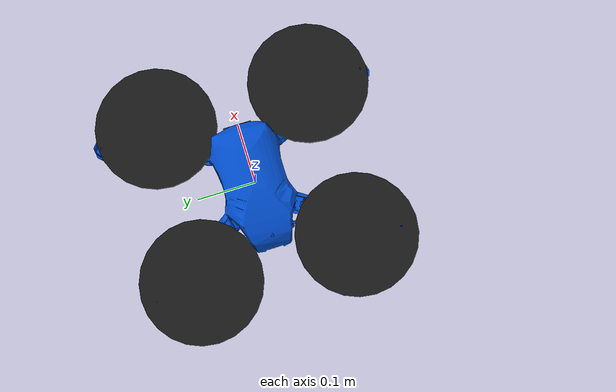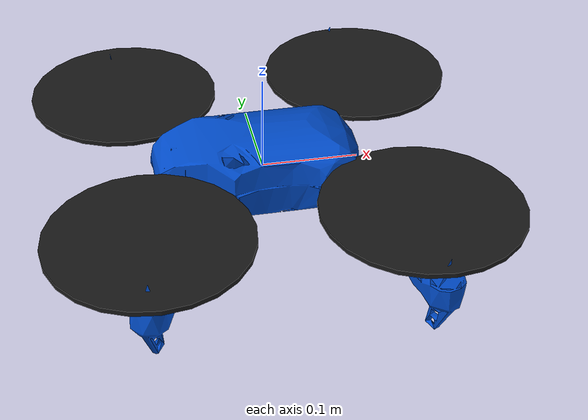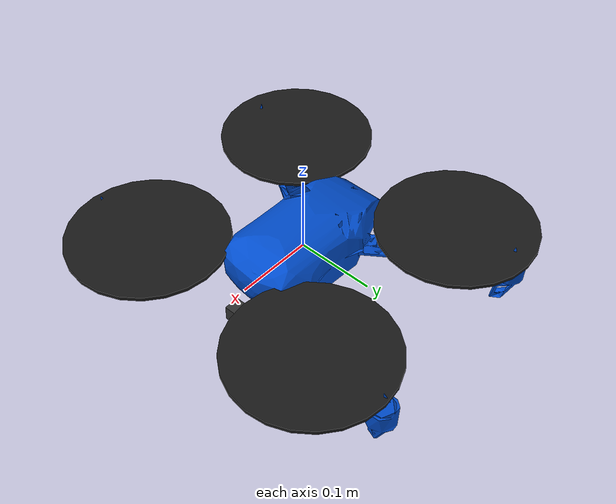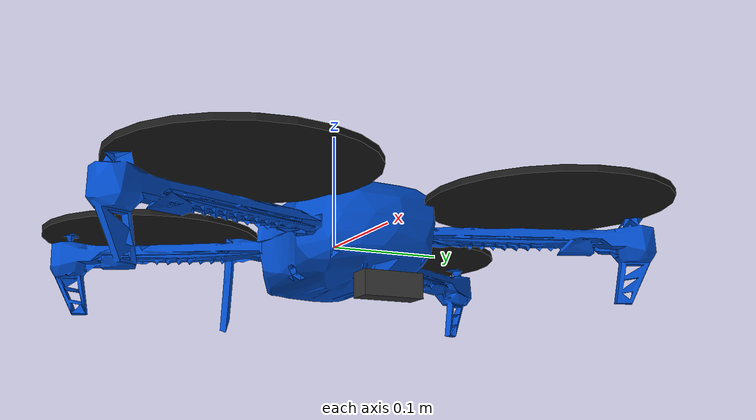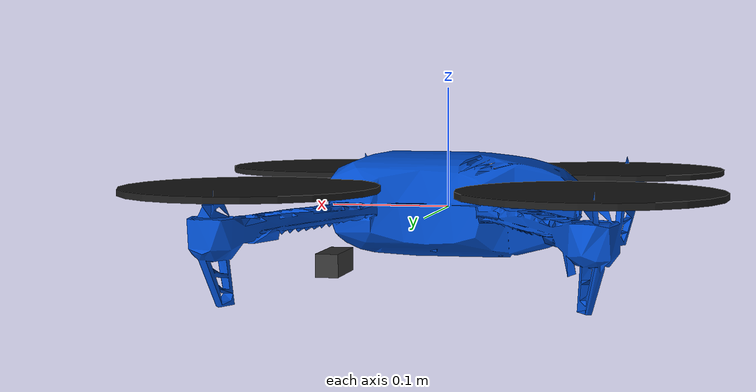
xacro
<?xml version="1.0"?>
<robot name="iris" xmlns:xacro="http://www.ros.org/wiki/xacro">

    <!-- Arguments -->
    <xacro:arg name="use_ros2_control" default="true"/>
    <xacro:arg name="sim_mode" default="false"/>

    <!-- Include all component files -->
    <xacro:include filename="$(find iris_description)/description/inertial_macros.xacro"/>
    <xacro:include filename="$(find iris_description)/description/robot_core.xacro"/>
    <xacro:include filename="$(find iris_description)/description/camera.xacro"/>
    <xacro:include filename="$(find iris_description)/description/imu.xacro"/>
    <xacro:include filename="$(find iris_description)/description/gazebo_control.xacro"/>

    <!-- Instantiate the downward-facing depth camera -->
    <xacro:depth_camera prefix="depth" parent_link="base_link">
        <origin xyz="0.1 0 -0.05" rpy="0 ${pi/2} 0"/>
    </xacro:depth_camera>

    <!-- Instantiate IMU sensor -->
    <xacro:imu_sensor prefix="main" parent_link="base_link">
        <origin xyz="0 0 0" rpy="0 0 0"/>
    </xacro:imu_sensor>

    <!-- Gazebo Control Plugin -->
    <xacro:gazebo_ros2_control use_ros2_control="$(arg use_ros2_control)"/>

</robot>

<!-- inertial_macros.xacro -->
<robot xmlns:xacro="http://www.ros.org/wiki/xacro">

    <!-- Macro for box inertia -->
    <xacro:macro name="inertial_box" params="mass x y z *origin">
        <inertial>
            <xacro:insert_block name="origin"/>
            <mass value="${mass}"/>
            <inertia ixx="${(1/12) * mass * (y*y+z*z)}" ixy="0.0" ixz="0.0"
                     iyy="${(1/12) * mass * (x*x+z*z)}" iyz="0.0"
                     izz="${(1/12) * mass * (x*x+y*y)}"/>
        </inertial>
    </xacro:macro>

    <!-- Macro for cylinder inertia -->
    <xacro:macro name="inertial_cylinder" params="mass length radius *origin">
        <inertial>
            <xacro:insert_block name="origin"/>
            <mass value="${mass}"/>
            <inertia ixx="${(1/12) * mass * (3*radius*radius + length*length)}" ixy="0.0" ixz="0.0"
                     iyy="${(1/12) * mass * (3*radius*radius + length*length)}" iyz="0.0"
                     izz="${(1/2) * mass * (radius*radius)}"/>
        </inertial>
    </xacro:macro>

    <!-- Macro for sphere inertia -->
    <xacro:macro name="inertial_sphere" params="mass radius *origin">
        <inertial>
            <xacro:insert_block name="origin"/>
            <mass value="${mass}"/>
            <inertia ixx="${(2/5) * mass * (radius*radius)}" ixy="0.0" ixz="0.0"
                     iyy="${(2/5) * mass * (radius*radius)}" iyz="0.0"
                     izz="${(2/5) * mass * (radius*radius)}"/>
        </inertial>
    </xacro:macro>

    <!-- Macro for custom inertia (for complex meshes like drone body) -->
    <xacro:macro name="inertial_custom" params="mass ixx ixy ixz iyy iyz izz *origin">
        <inertial>
            <xacro:insert_block name="origin"/>
            <mass value="${mass}"/>
            <inertia ixx="${ixx}" ixy="${ixy}" ixz="${ixz}"
                     iyy="${iyy}" iyz="${iyz}" izz="${izz}"/>
        </inertial>
    </xacro:macro>

</robot>

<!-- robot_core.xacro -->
<robot xmlns:xacro="http://www.ros.org/wiki/xacro">

    <xacro:include filename="inertial_macros.xacro"/>

    <!-- Iris Quadcopter Properties -->
    <xacro:property name="body_mass" value="1.5"/>
    <xacro:property name="body_radius" value="0.1"/>
    <xacro:property name="arm_length" value="0.13"/>
    <xacro:property name="rotor_offset_top" value="0.023"/>

    <!-- Colors -->
    <material name="blue">
        <color rgba="0.0 0.3 0.8 1.0"/>
    </material>

    <material name="black">
        <color rgba="0.1 0.1 0.1 1.0"/>
    </material>

    <material name="white">
        <color rgba="1.0 1.0 1.0 1.0"/>
    </material>

    <!-- Base Link (Main Body) -->
    <link name="base_link">
        <visual>
            <origin xyz="0 0 0" rpy="0 0 0"/>
            <geometry>
                <mesh filename="package://iris_description/meshes/iris.stl" scale="1 1 1"/>
            </geometry>
            <material name="blue"/>
        </visual>

        <collision>
            <origin xyz="0 0 0" rpy="0 0 0"/>
            <geometry>
                <mesh filename="package://iris_description/meshes/iris.stl" scale="1 1 1"/>
            </geometry>
        </collision>

        <!-- Inertial properties for quadcopter body -->
        <xacro:inertial_custom mass="${body_mass}"
                               ixx="0.029125" ixy="0.0" ixz="0.0"
                               iyy="0.029125" iyz="0.0" izz="0.055225">
            <origin xyz="0 0 0" rpy="0 0 0"/>
        </xacro:inertial_custom>
    </link>

    <!-- Gazebo reference for base_link -->
    <gazebo reference="base_link">
        <material>Gazebo/DarkGrey</material>
        <gravity>true</gravity>
    </gazebo>

    <!-- Rotor 0 (Front Right) -->
    <xacro:macro name="rotor" params="rotor_number x_pos y_pos">
        <link name="rotor_${rotor_number}">
            <visual>
                <origin xyz="0 0 0" rpy="0 0 0"/>
                <geometry>
                    <cylinder length="0.005" radius="0.1"/>
                </geometry>
                <material name="black"/>
            </visual>

            <collision>
                <origin xyz="0 0 0" rpy="0 0 0"/>
                <geometry>
                    <cylinder length="0.005" radius="0.1"/>
                </geometry>
            </collision>

            <xacro:inertial_cylinder mass="0.005" length="0.005" radius="0.1">
                <origin xyz="0 0 0" rpy="0 0 0"/>
            </xacro:inertial_cylinder>
        </link>

        <joint name="rotor_${rotor_number}_joint" type="continuous">
            <parent link="base_link"/>
            <child link="rotor_${rotor_number}"/>
            <origin xyz="${x_pos} ${y_pos} ${rotor_offset_top}" rpy="0 0 0"/>
            <axis xyz="0 0 1"/>
            <limit effort="1000.0" velocity="1000.0"/>
        </joint>

        <gazebo reference="rotor_${rotor_number}">
            <material>Gazebo/Black</material>
        </gazebo>
    </xacro:macro>

    <!-- Instantiate all 4 rotors -->
    <xacro:rotor rotor_number="0" x_pos="${arm_length}" y_pos="${arm_length}"/>
    <xacro:rotor rotor_number="1" x_pos="-${arm_length}" y_pos="${arm_length}"/>
    <xacro:rotor rotor_number="2" x_pos="${arm_length}" y_pos="-${arm_length}"/>
    <xacro:rotor rotor_number="3" x_pos="-${arm_length}" y_pos="-${arm_length}"/>

</robot>

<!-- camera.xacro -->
<robot xmlns:xacro="http://www.ros.org/wiki/xacro">

    <xacro:include filename="inertial_macros.xacro"/>

    <!-- Camera Properties -->
    <xacro:property name="camera_mass" value="0.01"/>
    <xacro:property name="camera_width" value="0.05"/>
    <xacro:property name="camera_height" value="0.02"/>
    <xacro:property name="camera_depth" value="0.02"/>

    <!-- Camera offset from base_link (downward facing) -->
    <xacro:property name="camera_x_offset" value="0.1"/>
    <xacro:property name="camera_y_offset" value="0.0"/>
    <xacro:property name="camera_z_offset" value="-0.05"/>

    <!-- Colors -->
    <material name="red">
        <color rgba="0.8 0.0 0.0 1.0"/>
    </material>

    <material name="camera_black">
        <color rgba="0.2 0.2 0.2 1.0"/>
    </material>

    <!-- Camera Macro -->
    <xacro:macro name="depth_camera" params="prefix parent_link *origin">

        <!-- Camera Link -->
        <link name="${prefix}_camera_link">
            <visual>
                <origin xyz="0 0 0" rpy="0 0 0"/>
                <geometry>
                    <box size="${camera_depth} ${camera_width} ${camera_height}"/>
                </geometry>
                <material name="camera_black"/>
            </visual>

            <collision>
                <origin xyz="0 0 0" rpy="0 0 0"/>
                <geometry>
                    <box size="${camera_depth} ${camera_width} ${camera_height}"/>
                </geometry>
            </collision>

            <xacro:inertial_box mass="${camera_mass}"
                                x="${camera_depth}"
                                y="${camera_width}"
                                z="${camera_height}">
                <origin xyz="0 0 0" rpy="0 0 0"/>
            </xacro:inertial_box>
        </link>

        <!-- Camera Joint (Fixed to parent, pointing downward) -->
        <joint name="${prefix}_camera_joint" type="fixed">
            <parent link="${parent_link}"/>
            <child link="${prefix}_camera_link"/>
            <xacro:insert_block name="origin"/>
        </joint>

        <!-- Camera Optical Frame (ROS convention: z forward, x right, y down) -->
        <link name="${prefix}_camera_optical_frame"/>

        <joint name="${prefix}_camera_optical_joint" type="fixed">
            <parent link="${prefix}_camera_link"/>
            <child link="${prefix}_camera_optical_frame"/>
            <origin xyz="0 0 0" rpy="${-pi/2} 0 ${-pi/2}"/>
        </joint>

        <!-- Gazebo Camera Plugin -->
        <gazebo reference="${prefix}_camera_link">
            <material>Gazebo/Red</material>

            <sensor name="${prefix}_camera" type="depth">
                <update_rate>30.0</update_rate>
                <visualize>true</visualize>

                <camera name="${prefix}_camera">
                    <horizontal_fov>1.047198</horizontal_fov>
                    <image>
                        <width>640</width>
                        <height>480</height>
                        <format>R8G8B8</format>
                    </image>
                    <clip>
                        <near>0.05</near>
                        <far>10.0</far>
                    </clip>
                    <noise>
                        <type>gaussian</type>
                        <mean>0.0</mean>
                        <stddev>0.007</stddev>
                    </noise>
                </camera>

                <plugin name="${prefix}_camera_controller" filename="libgazebo_ros_camera.so">
                    <ros>
                        <namespace>iris</namespace>
                        <remapping>${prefix}_camera/image_raw:=camera/image_raw</remapping>
                        <remapping>${prefix}_camera/image_depth:=camera/depth/image_raw</remapping>
                        <remapping>${prefix}_camera/camera_info:=camera/camera_info</remapping>
                        <remapping>${prefix}_camera/points:=camera/points</remapping>
                    </ros>
                    <camera_name>${prefix}_camera</camera_name>
                    <frame_name>${prefix}_camera_optical_frame</frame_name>
                    <hack_baseline>0.07</hack_baseline>
                    <min_depth>0.05</min_depth>
                    <max_depth>10.0</max_depth>
                </plugin>
            </sensor>
        </gazebo>

    </xacro:macro>

</robot>

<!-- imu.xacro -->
<robot xmlns:xacro="http://www.ros.org/wiki/xacro">

    <xacro:include filename="inertial_macros.xacro"/>

    <!-- IMU Properties -->
    <xacro:property name="imu_mass" value="0.001"/>

    <!-- IMU Macro -->
    <xacro:macro name="imu_sensor" params="prefix parent_link *origin">

        <!-- IMU Link -->
        <link name="${prefix}_imu_link">
            <xacro:inertial_box mass="${imu_mass}" x="0.01" y="0.01" z="0.005">
                <origin xyz="0 0 0" rpy="0 0 0"/>
            </xacro:inertial_box>
        </link>

        <!-- IMU Joint -->
        <joint name="${prefix}_imu_joint" type="fixed">
            <parent link="${parent_link}"/>
            <child link="${prefix}_imu_link"/>
            <xacro:insert_block name="origin"/>
        </joint>

        <!-- Gazebo IMU Plugin -->
        <gazebo reference="${prefix}_imu_link">
            <sensor name="${prefix}_imu_sensor" type="imu">
                <plugin filename="libgazebo_ros_imu_sensor.so" name="${prefix}_imu_plugin">
                    <ros>
                        <namespace>iris</namespace>
                        <remapping>~/out:=imu/data</remapping>
                    </ros>
                    <initial_orientation_as_reference>false</initial_orientation_as_reference>
                    <update_rate>100.0</update_rate>
                </plugin>
                <always_on>true</always_on>
                <update_rate>100</update_rate>
                <visualize>true</visualize>

                <imu>
                    <angular_velocity>
                        <x>
                            <noise type="gaussian">
                                <mean>0.0</mean>
                                <stddev>2e-4</stddev>
                                <bias_mean>0.0000075</bias_mean>
                                <bias_stddev>0.0000008</bias_stddev>
                            </noise>
                        </x>
                        <y>
                            <noise type="gaussian">
                                <mean>0.0</mean>
                                <stddev>2e-4</stddev>
                                <bias_mean>0.0000075</bias_mean>
                                <bias_stddev>0.0000008</bias_stddev>
                            </noise>
                        </y>
                        <z>
                            <noise type="gaussian">
                                <mean>0.0</mean>
                                <stddev>2e-4</stddev>
                                <bias_mean>0.0000075</bias_mean>
                                <bias_stddev>0.0000008</bias_stddev>
                            </noise>
                        </z>
                    </angular_velocity>

                    <linear_acceleration>
                        <x>
                            <noise type="gaussian">
                                <mean>0.0</mean>
                                <stddev>1.7e-2</stddev>
                                <bias_mean>0.1</bias_mean>
                                <bias_stddev>0.001</bias_stddev>
                            </noise>
                        </x>
                        <y>
                            <noise type="gaussian">
                                <mean>0.0</mean>
                                <stddev>1.7e-2</stddev>
                                <bias_mean>0.1</bias_mean>
                                <bias_stddev>0.001</bias_stddev>
                            </noise>
                        </y>
                        <z>
                            <noise type="gaussian">
                                <mean>0.0</mean>
                                <stddev>1.7e-2</stddev>
                                <bias_mean>0.1</bias_mean>
                                <bias_stddev>0.001</bias_stddev>
                            </noise>
                        </z>
                    </linear_acceleration>
                </imu>
            </sensor>
        </gazebo>

    </xacro:macro>

</robot>
